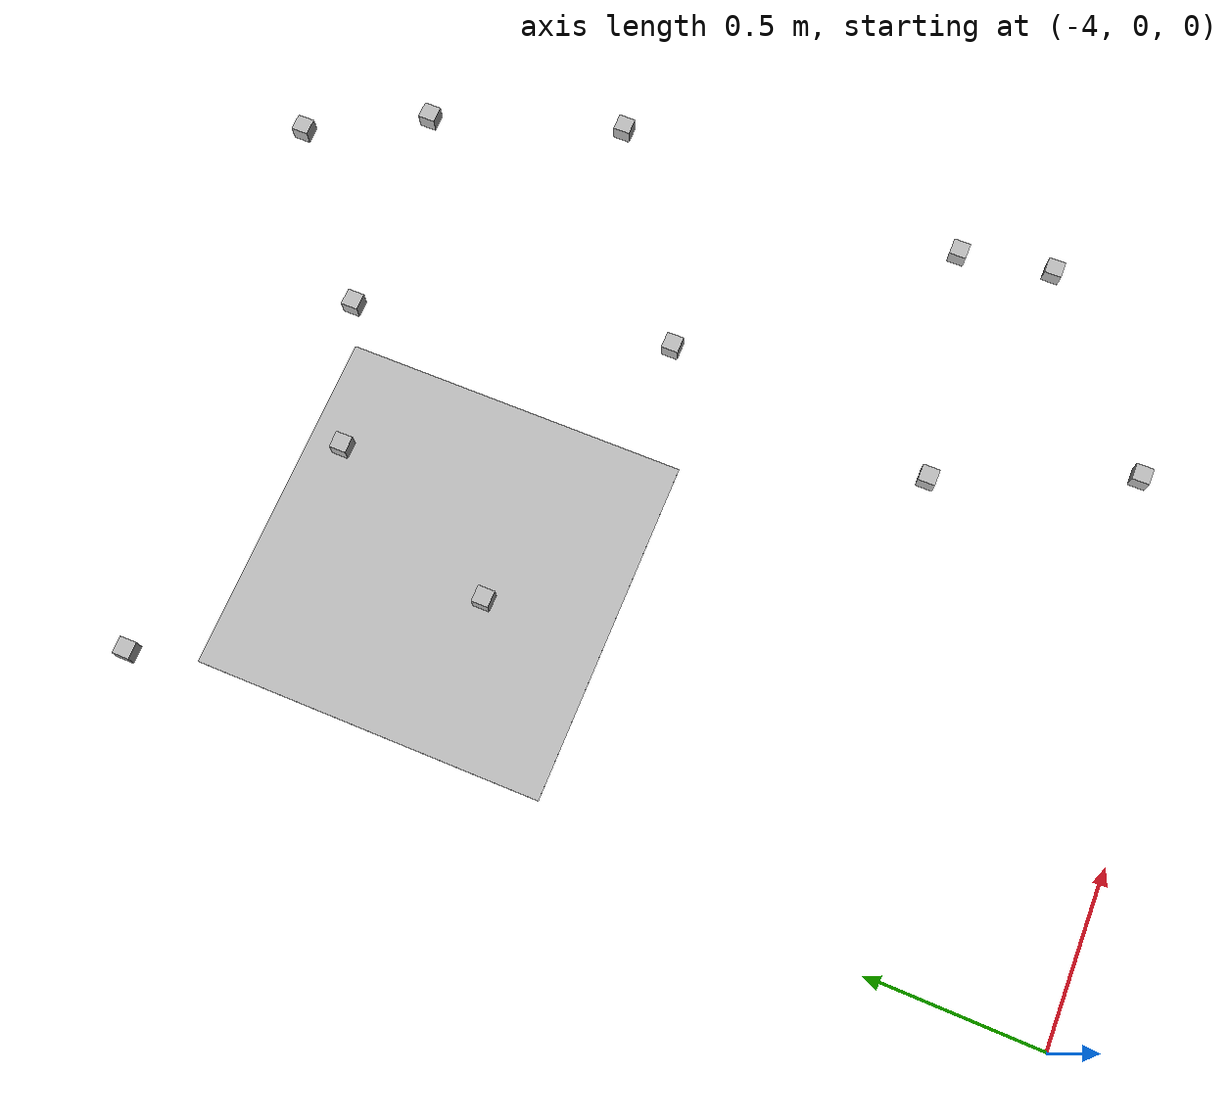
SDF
<sdf version="1.6">
 <world name="default">
  <model name="at39">
   <static>0</static>
   <link name="link">
    <inertial>
     <mass>0.01</mass>
     <inertia><ixx>4e-05</ixx><ixy>0</ixy><ixz>0</ixz><iyy>4e-05</iyy><iyz>0</iyz><izz>4e-05</izz></inertia>
    </inertial>
    <visual name="visual">
     <geometry><box><size>0.05 0.05 0.05</size></box></geometry>
     <material>
      <script>
       <uri>model://at0/materials/scripts</uri>
       <uri>model://at0/materials/textures</uri>
       <name>at0/Diffuse</name>
      </script>
     </material>
    </visual>
    <collision name="collision">
     <geometry><box><size>0.05 0.05 0.05</size></box></geometry>
     <surface><friction><ode><mu>0.8</mu><mu2>0.7</mu2></ode></friction></surface>
    </collision>
   </link>
   <pose>-1.93171 2.01413 0.024997 -2.9e-05 2.9e-05 -1e-06</pose>
  </model>
  <model name="at51">
   <static>0</static>
   <link name="link">
    <inertial>
     <mass>0.01</mass>
     <inertia><ixx>4e-05</ixx><ixy>0</ixy><ixz>0</ixz><iyy>4e-05</iyy><iyz>0</iyz><izz>4e-05</izz></inertia>
    </inertial>
    <visual name="visual">
     <geometry><box><size>0.05 0.05 0.05</size></box></geometry>
     <material>
      <script>
       <uri>model://at0/materials/scripts</uri>
       <uri>model://at0/materials/textures</uri>
       <name>at0/Diffuse</name>
      </script>
     </material>
    </visual>
    <collision name="collision">
     <geometry><box><size>0.05 0.05 0.05</size></box></geometry>
     <surface><friction><ode><mu>0.8</mu><mu2>0.7</mu2></ode></friction></surface>
    </collision>
   </link>
   <pose>-1.94691 0.939042 0.024997 2.9e-05 -2.9e-05 -1e-06</pose>
  </model>
  <model name="at53">
   <static>0</static>
   <link name="link">
    <inertial>
     <mass>0.01</mass>
     <inertia><ixx>4e-05</ixx><ixy>0</ixy><ixz>0</ixz><iyy>4e-05</iyy><iyz>0</iyz><izz>4e-05</izz></inertia>
    </inertial>
    <visual name="visual">
     <geometry><box><size>0.05 0.05 0.05</size></box></geometry>
     <material>
      <script>
       <uri>model://at0/materials/scripts</uri>
       <uri>model://at0/materials/textures</uri>
       <name>at0/Diffuse</name>
      </script>
     </material>
    </visual>
    <collision name="collision">
     <geometry><box><size>0.05 0.05 0.05</size></box></geometry>
     <surface><friction><ode><mu>0.8</mu><mu2>0.7</mu2></ode></friction></surface>
    </collision>
   </link>
   <pose>-3.94683 2.65708 0.024997 -2.9e-05 2.9e-05 -1e-06</pose>
  </model>
  <model name="at61">
   <static>0</static>
   <link name="link">
    <inertial>
     <mass>0.01</mass>
     <inertia><ixx>4e-05</ixx><ixy>0</ixy><ixz>0</ixz><iyy>4e-05</iyy><iyz>0</iyz><izz>4e-05</izz></inertia>
    </inertial>
    <visual name="visual">
     <geometry><box><size>0.05 0.05 0.05</size></box></geometry>
     <material>
      <script>
       <uri>model://at0/materials/scripts</uri>
       <uri>model://at0/materials/textures</uri>
       <name>at0/Diffuse</name>
      </script>
     </material>
    </visual>
    <collision name="collision">
     <geometry><box><size>0.05 0.05 0.05</size></box></geometry>
     <surface><friction><ode><mu>0.8</mu><mu2>0.7</mu2></ode></friction></surface>
    </collision>
   </link>
   <pose>-2.54534 1.612 0.024997 -2.9e-05 2.9e-05 -1e-06</pose>
  </model>
  <model name="at62">
   <static>0</static>
   <link name="link">
    <inertial>
     <mass>0.01</mass>
     <inertia><ixx>4e-05</ixx><ixy>0</ixy><ixz>0</ixz><iyy>4e-05</iyy><iyz>0</iyz><izz>4e-05</izz></inertia>
    </inertial>
    <visual name="visual">
     <geometry><box><size>0.05 0.05 0.05</size></box></geometry>
     <material>
      <script>
       <uri>model://at0/materials/scripts</uri>
       <uri>model://at0/materials/textures</uri>
       <name>at0/Diffuse</name>
      </script>
     </material>
    </visual>
    <collision name="collision">
     <geometry><box><size>0.05 0.05 0.05</size></box></geometry>
     <surface><friction><ode><mu>0.8</mu><mu2>0.7</mu2></ode></friction></surface>
    </collision>
   </link>
   <pose>-3.44684 1.81244 0.024997 -2.9e-05 2.9e-05 -1e-06</pose>
  </model>
  <model name="at99">
   <static>0</static>
   <link name="link">
    <inertial>
     <mass>0.01</mass>
     <inertia><ixx>4e-05</ixx><ixy>0</ixy><ixz>0</ixz><iyy>4e-05</iyy><iyz>0</iyz><izz>4e-05</izz></inertia>
    </inertial>
    <visual name="visual">
     <geometry><box><size>0.05 0.05 0.05</size></box></geometry>
     <material>
      <script>
       <uri>model://at0/materials/scripts</uri>
       <uri>model://at0/materials/textures</uri>
       <name>at0/Diffuse</name>
      </script>
     </material>
    </visual>
    <collision name="collision">
     <geometry><box><size>0.05 0.05 0.05</size></box></geometry>
     <surface><friction><ode><mu>0.8</mu><mu2>0.7</mu2></ode></friction></surface>
    </collision>
   </link>
   <pose>-2.76856 2.52723 0.024997 -2.9e-05 2.9e-05 -1e-06</pose>
  </model>
  <model name="at111">
   <static>0</static>
   <link name="link">
    <inertial>
     <mass>0.01</mass>
     <inertia><ixx>4e-05</ixx><ixy>0</ixy><ixz>0</ixz><iyy>4e-05</iyy><iyz>0</iyz><izz>4e-05</izz></inertia>
    </inertial>
    <visual name="visual">
     <geometry><box><size>0.05 0.05 0.05</size></box></geometry>
     <material>
      <script>
       <uri>model://at0/materials/scripts</uri>
       <uri>model://at0/materials/textures</uri>
       <name>at0/Diffuse</name>
      </script>
     </material>
    </visual>
    <collision name="collision">
     <geometry><box><size>0.05 0.05 0.05</size></box></geometry>
     <surface><friction><ode><mu>0.8</mu><mu2>0.7</mu2></ode></friction></surface>
    </collision>
   </link>
   <pose>-2.42157 0.235285 0.024997 2.9e-05 -2.9e-05 -1e-06</pose>
  </model>
  <model name="at119">
   <static>0</static>
   <link name="link">
    <inertial>
     <mass>0.01</mass>
     <inertia><ixx>4e-05</ixx><ixy>0</ixy><ixz>0</ixz><iyy>4e-05</iyy><iyz>0</iyz><izz>4e-05</izz></inertia>
    </inertial>
    <visual name="visual">
     <geometry><box><size>0.05 0.05 0.05</size></box></geometry>
     <material>
      <script>
       <uri>model://at0/materials/scripts</uri>
       <uri>model://at0/materials/textures</uri>
       <name>at0/Diffuse</name>
      </script>
     </material>
    </visual>
    <collision name="collision">
     <geometry><box><size>0.05 0.05 0.05</size></box></geometry>
     <surface><friction><ode><mu>0.8</mu><mu2>0.7</mu2></ode></friction></surface>
    </collision>
   </link>
   <pose>-3.18407 2.36843 0.024997 2.9e-05 -2.9e-05 -1e-06</pose>
  </model>
  <model name="at125">
   <static>0</static>
   <link name="link">
    <inertial>
     <mass>0.01</mass>
     <inertia><ixx>4e-05</ixx><ixy>0</ixy><ixz>0</ixz><iyy>4e-05</iyy><iyz>0</iyz><izz>4e-05</izz></inertia>
    </inertial>
    <visual name="visual">
     <geometry><box><size>0.05 0.05 0.05</size></box></geometry>
     <material>
      <script>
       <uri>model://at0/materials/scripts</uri>
       <uri>model://at0/materials/textures</uri>
       <name>at0/Diffuse</name>
      </script>
     </material>
    </visual>
    <collision name="collision">
     <geometry><box><size>0.05 0.05 0.05</size></box></geometry>
     <surface><friction><ode><mu>0.8</mu><mu2>0.7</mu2></ode></friction></surface>
    </collision>
   </link>
   <pose>-2.29848 2.91487 0.024997 -2.9e-05 2.9e-05 -1e-06</pose>
  </model>
  <model name="at180">
   <static>0</static>
   <link name="link">
    <inertial>
     <mass>0.01</mass>
     <inertia><ixx>4e-05</ixx><ixy>0</ixy><ixz>0</ixz><iyy>4e-05</iyy><iyz>0</iyz><izz>4e-05</izz></inertia>
    </inertial>
    <visual name="visual">
     <geometry><box><size>0.05 0.05 0.05</size></box></geometry>
     <material>
      <script>
       <uri>model://at0/materials/scripts</uri>
       <uri>model://at0/materials/textures</uri>
       <name>at0/Diffuse</name>
      </script>
     </material>
    </visual>
    <collision name="collision">
     <geometry><box><size>0.05 0.05 0.05</size></box></geometry>
     <surface><friction><ode><mu>0.8</mu><mu2>0.7</mu2></ode></friction></surface>
    </collision>
   </link>
   <pose>-2.65066 0.79267 0.024997 -2.9e-05 2.9e-05 -1e-06</pose>
  </model>
  <model name="at224">
   <static>0</static>
   <link name="link">
    <inertial>
     <mass>0.01</mass>
     <inertia><ixx>4e-05</ixx><ixy>0</ixy><ixz>0</ixz><iyy>4e-05</iyy><iyz>0</iyz><izz>4e-05</izz></inertia>
    </inertial>
    <visual name="visual">
     <geometry><box><size>0.05 0.05 0.05</size></box></geometry>
     <material>
      <script>
       <uri>model://at0/materials/scripts</uri>
       <uri>model://at0/materials/textures</uri>
       <name>at0/Diffuse</name>
      </script>
     </material>
    </visual>
    <collision name="collision">
     <geometry><box><size>0.05 0.05 0.05</size></box></geometry>
     <surface><friction><ode><mu>0.8</mu><mu2>0.7</mu2></ode></friction></surface>
    </collision>
   </link>
   <pose>-2.11561 2.57743 0.024997 2.9e-05 -2.9e-05 -1e-06</pose>
  </model>
  <model name="at249">
   <static>0</static>
   <link name="link">
    <inertial>
     <mass>0.01</mass>
     <inertia><ixx>4e-05</ixx><ixy>0</ixy><ixz>0</ixz><iyy>4e-05</iyy><iyz>0</iyz><izz>4e-05</izz></inertia>
    </inertial>
    <visual name="visual">
     <geometry><box><size>0.05 0.05 0.05</size></box></geometry>
     <material>
      <script>
       <uri>model://at0/materials/scripts</uri>
       <uri>model://at0/materials/textures</uri>
       <name>at0/Diffuse</name>
      </script>
     </material>
    </visual>
    <collision name="collision">
     <geometry><box><size>0.05 0.05 0.05</size></box></geometry>
     <surface><friction><ode><mu>0.8</mu><mu2>0.7</mu2></ode></friction></surface>
    </collision>
   </link>
   <pose>-1.89966 0.660712 0.024997 -2.9e-05 2.9e-05 -1e-06</pose>
  </model>
  <model name="collection_disk">
   <static>1</static>
   <link name="link">
    <visual name="visual">
     <geometry><box><size>1.016 1.016 0.001</size></box></geometry>
     <material>
      <script>
       <uri>model://collection_disk/materials/scripts</uri>
       <uri>model://collection_disk/materials/textures</uri>
       <name>collection_disk/Diffuse</name>
      </script>
     </material>
    </visual>
   </link>
   <plugin name="score_sim" filename="libgazebo_plugins_score.so">
    <scoreTopic>/collectionZone/score</scoreTopic>
    <collectionZoneSquareSize>1.016</collectionZoneSquareSize>
    <updateRate>0.2</updateRate>
   </plugin>
   <pose>-3.39227 1.96356 0 0 -0 0</pose>
  </model>
 </world>
</sdf>
